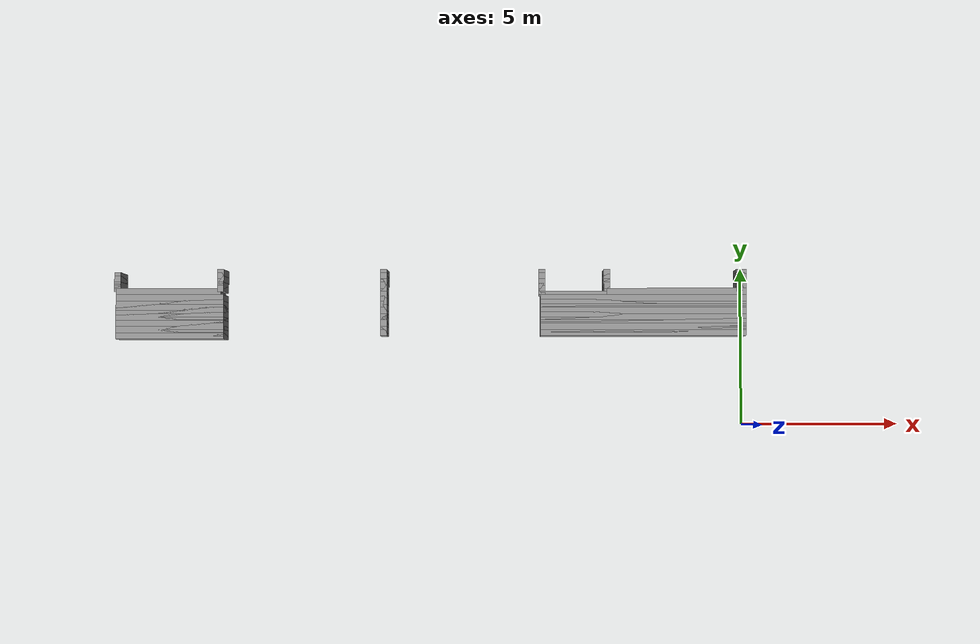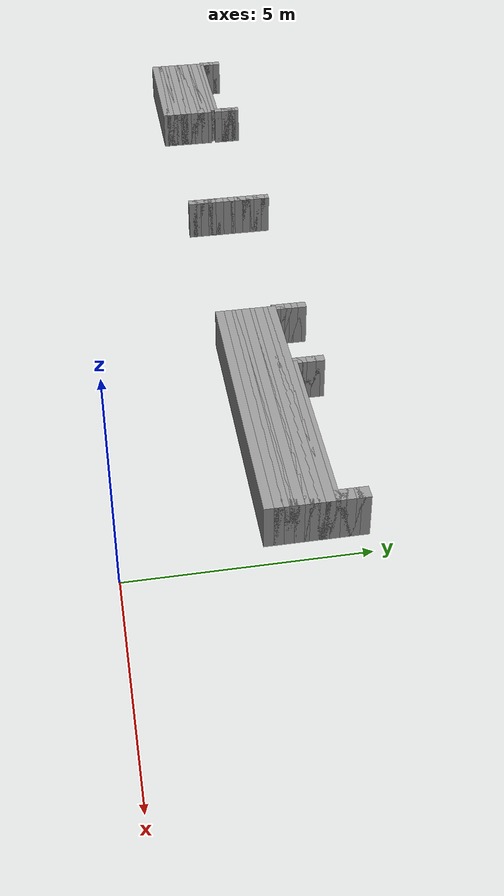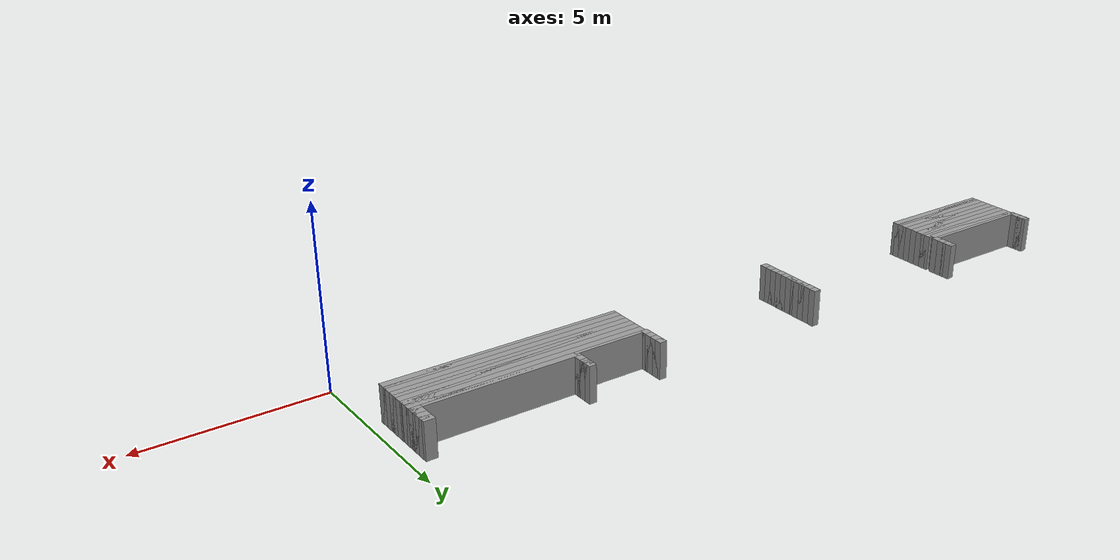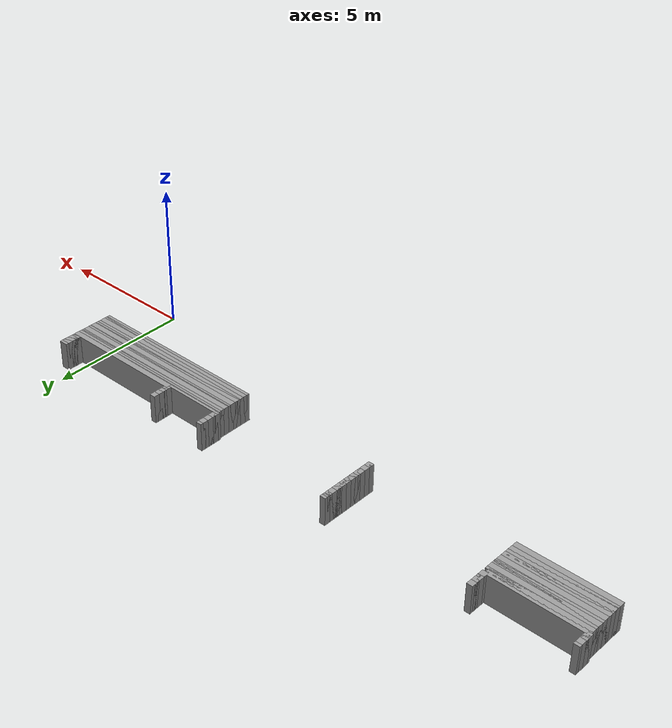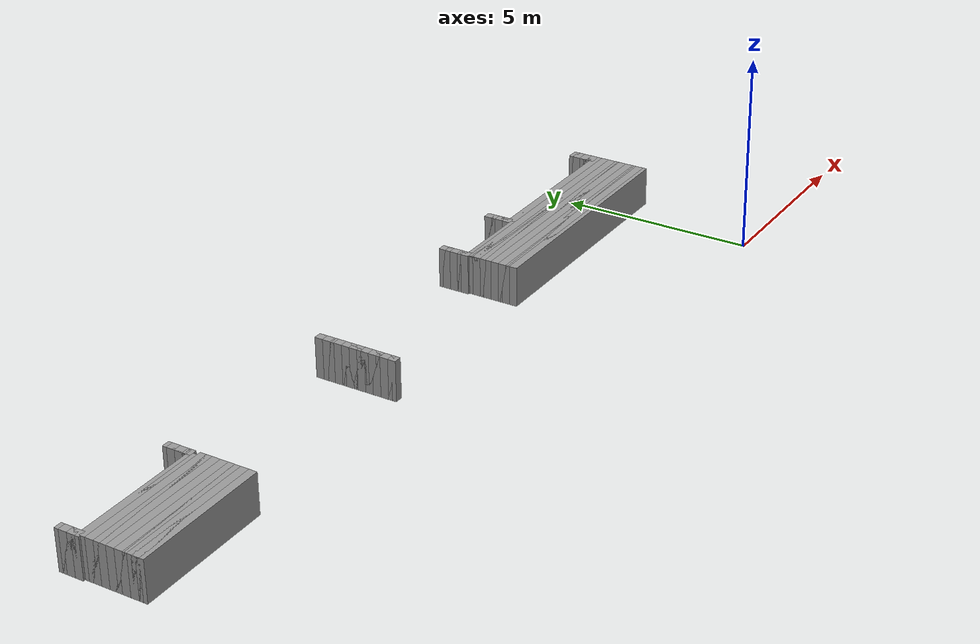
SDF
<sdf version="1.6">
 <world name="GridMap">
  <model name="GridMap">
   <link name="Wall_(182.0,28.0)">
    <collision name="Wall_(182.0,28.0)_Collision">
     <geometry><box><size>3.4 0.2 1.0</size></box></geometry>
     <pose>-18.2 2.8 0.5 0 -0 0</pose>
    </collision>
    <visual name="Wall_(182.0,28.0)_Visual">
     <geometry><box><size>3.4 0.2 1.0</size></box></geometry>
     <pose>-18.2 2.8 0.5 0 -0 0</pose>
     <material>
      <script><uri>file://media/materials/scripts/gazebo.material</uri><name>Gazebo/Grey</name></script>
      <ambient>1 1 1 1</ambient>
     </material>
     <meta><layer>0</layer></meta>
    </visual>
    <pose>0 0 0.5 0 -0 0</pose>
   </link>
   <link name="Wall_(32.5,29.0)">
    <collision name="Wall_(32.5,29.0)_Collision">
     <geometry><box><size>6.5 0.2 1.0</size></box></geometry>
     <pose>-3.25 2.9 0.5 0 -0 0</pose>
    </collision>
    <visual name="Wall_(32.5,29.0)_Visual">
     <geometry><box><size>6.5 0.2 1.0</size></box></geometry>
     <pose>-3.25 2.9 0.5 0 -0 0</pose>
     <material>
      <script><uri>file://media/materials/scripts/gazebo.material</uri><name>Gazebo/Grey</name></script>
      <ambient>1 1 1 1</ambient>
     </material>
     <meta><layer>0</layer></meta>
    </visual>
    <pose>0 0 0.5 0 -0 0</pose>
   </link>
   <link name="Wall_(114.5,29.0)">
    <collision name="Wall_(114.5,29.0)_Collision">
     <geometry><box><size>0.2 0.2 1.0</size></box></geometry>
     <pose>-11.45 2.9 0.5 0 -0 0</pose>
    </collision>
    <visual name="Wall_(114.5,29.0)_Visual">
     <geometry><box><size>0.2 0.2 1.0</size></box></geometry>
     <pose>-11.45 2.9 0.5 0 -0 0</pose>
     <material>
      <script><uri>file://media/materials/scripts/gazebo.material</uri><name>Gazebo/Grey</name></script>
      <ambient>1 1 1 1</ambient>
     </material>
     <meta><layer>0</layer></meta>
    </visual>
    <pose>0 0 0.5 0 -0 0</pose>
   </link>
   <link name="Wall_(182.0,29.0)">
    <collision name="Wall_(182.0,29.0)_Collision">
     <geometry><box><size>3.4 0.2 1.0</size></box></geometry>
     <pose>-18.2 2.9 0.5 0 -0 0</pose>
    </collision>
    <visual name="Wall_(182.0,29.0)_Visual">
     <geometry><box><size>3.4 0.2 1.0</size></box></geometry>
     <pose>-18.2 2.9 0.5 0 -0 0</pose>
     <material>
      <script><uri>file://media/materials/scripts/gazebo.material</uri><name>Gazebo/Grey</name></script>
      <ambient>1 1 1 1</ambient>
     </material>
     <meta><layer>0</layer></meta>
    </visual>
    <pose>0 0 0.5 0 -0 0</pose>
   </link>
   <link name="Wall_(32.5,30.0)">
    <collision name="Wall_(32.5,30.0)_Collision">
     <geometry><box><size>6.5 0.2 1.0</size></box></geometry>
     <pose>-3.25 3.0 0.5 0 -0 0</pose>
    </collision>
    <visual name="Wall_(32.5,30.0)_Visual">
     <geometry><box><size>6.5 0.2 1.0</size></box></geometry>
     <pose>-3.25 3.0 0.5 0 -0 0</pose>
     <material>
      <script><uri>file://media/materials/scripts/gazebo.material</uri><name>Gazebo/Grey</name></script>
      <ambient>1 1 1 1</ambient>
     </material>
     <meta><layer>0</layer></meta>
    </visual>
    <pose>0 0 0.5 0 -0 0</pose>
   </link>
   <link name="Wall_(114.5,30.0)">
    <collision name="Wall_(114.5,30.0)_Collision">
     <geometry><box><size>0.2 0.2 1.0</size></box></geometry>
     <pose>-11.45 3.0 0.5 0 -0 0</pose>
    </collision>
    <visual name="Wall_(114.5,30.0)_Visual">
     <geometry><box><size>0.2 0.2 1.0</size></box></geometry>
     <pose>-11.45 3.0 0.5 0 -0 0</pose>
     <material>
      <script><uri>file://media/materials/scripts/gazebo.material</uri><name>Gazebo/Grey</name></script>
      <ambient>1 1 1 1</ambient>
     </material>
     <meta><layer>0</layer></meta>
    </visual>
    <pose>0 0 0.5 0 -0 0</pose>
   </link>
   <link name="Wall_(182.0,30.0)">
    <collision name="Wall_(182.0,30.0)_Collision">
     <geometry><box><size>3.4 0.2 1.0</size></box></geometry>
     <pose>-18.2 3.0 0.5 0 -0 0</pose>
    </collision>
    <visual name="Wall_(182.0,30.0)_Visual">
     <geometry><box><size>3.4 0.2 1.0</size></box></geometry>
     <pose>-18.2 3.0 0.5 0 -0 0</pose>
     <material>
      <script><uri>file://media/materials/scripts/gazebo.material</uri><name>Gazebo/Grey</name></script>
      <ambient>1 1 1 1</ambient>
     </material>
     <meta><layer>0</layer></meta>
    </visual>
    <pose>0 0 0.5 0 -0 0</pose>
   </link>
   <link name="Wall_(32.5,31.0)">
    <collision name="Wall_(32.5,31.0)_Collision">
     <geometry><box><size>6.5 0.2 1.0</size></box></geometry>
     <pose>-3.25 3.1 0.5 0 -0 0</pose>
    </collision>
    <visual name="Wall_(32.5,31.0)_Visual">
     <geometry><box><size>6.5 0.2 1.0</size></box></geometry>
     <pose>-3.25 3.1 0.5 0 -0 0</pose>
     <material>
      <script><uri>file://media/materials/scripts/gazebo.material</uri><name>Gazebo/Grey</name></script>
      <ambient>1 1 1 1</ambient>
     </material>
     <meta><layer>0</layer></meta>
    </visual>
    <pose>0 0 0.5 0 -0 0</pose>
   </link>
   <link name="Wall_(114.5,31.0)">
    <collision name="Wall_(114.5,31.0)_Collision">
     <geometry><box><size>0.2 0.2 1.0</size></box></geometry>
     <pose>-11.45 3.1 0.5 0 -0 0</pose>
    </collision>
    <visual name="Wall_(114.5,31.0)_Visual">
     <geometry><box><size>0.2 0.2 1.0</size></box></geometry>
     <pose>-11.45 3.1 0.5 0 -0 0</pose>
     <material>
      <script><uri>file://media/materials/scripts/gazebo.material</uri><name>Gazebo/Grey</name></script>
      <ambient>1 1 1 1</ambient>
     </material>
     <meta><layer>0</layer></meta>
    </visual>
    <pose>0 0 0.5 0 -0 0</pose>
   </link>
   <link name="Wall_(182.0,31.0)">
    <collision name="Wall_(182.0,31.0)_Collision">
     <geometry><box><size>3.4 0.2 1.0</size></box></geometry>
     <pose>-18.2 3.1 0.5 0 -0 0</pose>
    </collision>
    <visual name="Wall_(182.0,31.0)_Visual">
     <geometry><box><size>3.4 0.2 1.0</size></box></geometry>
     <pose>-18.2 3.1 0.5 0 -0 0</pose>
     <material>
      <script><uri>file://media/materials/scripts/gazebo.material</uri><name>Gazebo/Grey</name></script>
      <ambient>1 1 1 1</ambient>
     </material>
     <meta><layer>0</layer></meta>
    </visual>
    <pose>0 0 0.5 0 -0 0</pose>
   </link>
   <link name="Wall_(32.5,32.0)">
    <collision name="Wall_(32.5,32.0)_Collision">
     <geometry><box><size>6.5 0.2 1.0</size></box></geometry>
     <pose>-3.25 3.2 0.5 0 -0 0</pose>
    </collision>
    <visual name="Wall_(32.5,32.0)_Visual">
     <geometry><box><size>6.5 0.2 1.0</size></box></geometry>
     <pose>-3.25 3.2 0.5 0 -0 0</pose>
     <material>
      <script><uri>file://media/materials/scripts/gazebo.material</uri><name>Gazebo/Grey</name></script>
      <ambient>1 1 1 1</ambient>
     </material>
     <meta><layer>0</layer></meta>
    </visual>
    <pose>0 0 0.5 0 -0 0</pose>
   </link>
   <link name="Wall_(114.5,32.0)">
    <collision name="Wall_(114.5,32.0)_Collision">
     <geometry><box><size>0.2 0.2 1.0</size></box></geometry>
     <pose>-11.45 3.2 0.5 0 -0 0</pose>
    </collision>
    <visual name="Wall_(114.5,32.0)_Visual">
     <geometry><box><size>0.2 0.2 1.0</size></box></geometry>
     <pose>-11.45 3.2 0.5 0 -0 0</pose>
     <material>
      <script><uri>file://media/materials/scripts/gazebo.material</uri><name>Gazebo/Grey</name></script>
      <ambient>1 1 1 1</ambient>
     </material>
     <meta><layer>0</layer></meta>
    </visual>
    <pose>0 0 0.5 0 -0 0</pose>
   </link>
   <link name="Wall_(182.0,32.0)">
    <collision name="Wall_(182.0,32.0)_Collision">
     <geometry><box><size>3.4 0.2 1.0</size></box></geometry>
     <pose>-18.2 3.2 0.5 0 -0 0</pose>
    </collision>
    <visual name="Wall_(182.0,32.0)_Visual">
     <geometry><box><size>3.4 0.2 1.0</size></box></geometry>
     <pose>-18.2 3.2 0.5 0 -0 0</pose>
     <material>
      <script><uri>file://media/materials/scripts/gazebo.material</uri><name>Gazebo/Grey</name></script>
      <ambient>1 1 1 1</ambient>
     </material>
     <meta><layer>0</layer></meta>
    </visual>
    <pose>0 0 0.5 0 -0 0</pose>
   </link>
   <link name="Wall_(32.5,33.0)">
    <collision name="Wall_(32.5,33.0)_Collision">
     <geometry><box><size>6.5 0.2 1.0</size></box></geometry>
     <pose>-3.25 3.3 0.5 0 -0 0</pose>
    </collision>
    <visual name="Wall_(32.5,33.0)_Visual">
     <geometry><box><size>6.5 0.2 1.0</size></box></geometry>
     <pose>-3.25 3.3 0.5 0 -0 0</pose>
     <material>
      <script><uri>file://media/materials/scripts/gazebo.material</uri><name>Gazebo/Grey</name></script>
      <ambient>1 1 1 1</ambient>
     </material>
     <meta><layer>0</layer></meta>
    </visual>
    <pose>0 0 0.5 0 -0 0</pose>
   </link>
   <link name="Wall_(114.5,33.0)">
    <collision name="Wall_(114.5,33.0)_Collision">
     <geometry><box><size>0.2 0.2 1.0</size></box></geometry>
     <pose>-11.45 3.3 0.5 0 -0 0</pose>
    </collision>
    <visual name="Wall_(114.5,33.0)_Visual">
     <geometry><box><size>0.2 0.2 1.0</size></box></geometry>
     <pose>-11.45 3.3 0.5 0 -0 0</pose>
     <material>
      <script><uri>file://media/materials/scripts/gazebo.material</uri><name>Gazebo/Grey</name></script>
      <ambient>1 1 1 1</ambient>
     </material>
     <meta><layer>0</layer></meta>
    </visual>
    <pose>0 0 0.5 0 -0 0</pose>
   </link>
   <link name="Wall_(182.0,33.0)">
    <collision name="Wall_(182.0,33.0)_Collision">
     <geometry><box><size>3.4 0.2 1.0</size></box></geometry>
     <pose>-18.2 3.3 0.5 0 -0 0</pose>
    </collision>
    <visual name="Wall_(182.0,33.0)_Visual">
     <geometry><box><size>3.4 0.2 1.0</size></box></geometry>
     <pose>-18.2 3.3 0.5 0 -0 0</pose>
     <material>
      <script><uri>file://media/materials/scripts/gazebo.material</uri><name>Gazebo/Grey</name></script>
      <ambient>1 1 1 1</ambient>
     </material>
     <meta><layer>0</layer></meta>
    </visual>
    <pose>0 0 0.5 0 -0 0</pose>
   </link>
   <link name="Wall_(32.5,34.0)">
    <collision name="Wall_(32.5,34.0)_Collision">
     <geometry><box><size>6.5 0.2 1.0</size></box></geometry>
     <pose>-3.25 3.4 0.5 0 -0 0</pose>
    </collision>
    <visual name="Wall_(32.5,34.0)_Visual">
     <geometry><box><size>6.5 0.2 1.0</size></box></geometry>
     <pose>-3.25 3.4 0.5 0 -0 0</pose>
     <material>
      <script><uri>file://media/materials/scripts/gazebo.material</uri><name>Gazebo/Grey</name></script>
      <ambient>1 1 1 1</ambient>
     </material>
     <meta><layer>0</layer></meta>
    </visual>
    <pose>0 0 0.5 0 -0 0</pose>
   </link>
   <link name="Wall_(114.5,34.0)">
    <collision name="Wall_(114.5,34.0)_Collision">
     <geometry><box><size>0.2 0.2 1.0</size></box></geometry>
     <pose>-11.45 3.4 0.5 0 -0 0</pose>
    </collision>
    <visual name="Wall_(114.5,34.0)_Visual">
     <geometry><box><size>0.2 0.2 1.0</size></box></geometry>
     <pose>-11.45 3.4 0.5 0 -0 0</pose>
     <material>
      <script><uri>file://media/materials/scripts/gazebo.material</uri><name>Gazebo/Grey</name></script>
      <ambient>1 1 1 1</ambient>
     </material>
     <meta><layer>0</layer></meta>
    </visual>
    <pose>0 0 0.5 0 -0 0</pose>
   </link>
   <link name="Wall_(182.0,34.0)">
    <collision name="Wall_(182.0,34.0)_Collision">
     <geometry><box><size>3.4 0.2 1.0</size></box></geometry>
     <pose>-18.2 3.4 0.5 0 -0 0</pose>
    </collision>
    <visual name="Wall_(182.0,34.0)_Visual">
     <geometry><box><size>3.4 0.2 1.0</size></box></geometry>
     <pose>-18.2 3.4 0.5 0 -0 0</pose>
     <material>
      <script><uri>file://media/materials/scripts/gazebo.material</uri><name>Gazebo/Grey</name></script>
      <ambient>1 1 1 1</ambient>
     </material>
     <meta><layer>0</layer></meta>
    </visual>
    <pose>0 0 0.5 0 -0 0</pose>
   </link>
   <link name="Wall_(32.5,35.0)">
    <collision name="Wall_(32.5,35.0)_Collision">
     <geometry><box><size>6.5 0.2 1.0</size></box></geometry>
     <pose>-3.25 3.5 0.5 0 -0 0</pose>
    </collision>
    <visual name="Wall_(32.5,35.0)_Visual">
     <geometry><box><size>6.5 0.2 1.0</size></box></geometry>
     <pose>-3.25 3.5 0.5 0 -0 0</pose>
     <material>
      <script><uri>file://media/materials/scripts/gazebo.material</uri><name>Gazebo/Grey</name></script>
      <ambient>1 1 1 1</ambient>
     </material>
     <meta><layer>0</layer></meta>
    </visual>
    <pose>0 0 0.5 0 -0 0</pose>
   </link>
   <link name="Wall_(114.5,35.0)">
    <collision name="Wall_(114.5,35.0)_Collision">
     <geometry><box><size>0.2 0.2 1.0</size></box></geometry>
     <pose>-11.45 3.5 0.5 0 -0 0</pose>
    </collision>
    <visual name="Wall_(114.5,35.0)_Visual">
     <geometry><box><size>0.2 0.2 1.0</size></box></geometry>
     <pose>-11.45 3.5 0.5 0 -0 0</pose>
     <material>
      <script><uri>file://media/materials/scripts/gazebo.material</uri><name>Gazebo/Grey</name></script>
      <ambient>1 1 1 1</ambient>
     </material>
     <meta><layer>0</layer></meta>
    </visual>
    <pose>0 0 0.5 0 -0 0</pose>
   </link>
   <link name="Wall_(182.0,35.0)">
    <collision name="Wall_(182.0,35.0)_Collision">
     <geometry><box><size>3.4 0.2 1.0</size></box></geometry>
     <pose>-18.2 3.5 0.5 0 -0 0</pose>
    </collision>
    <visual name="Wall_(182.0,35.0)_Visual">
     <geometry><box><size>3.4 0.2 1.0</size></box></geometry>
     <pose>-18.2 3.5 0.5 0 -0 0</pose>
     <material>
      <script><uri>file://media/materials/scripts/gazebo.material</uri><name>Gazebo/Grey</name></script>
      <ambient>1 1 1 1</ambient>
     </material>
     <meta><layer>0</layer></meta>
    </visual>
    <pose>0 0 0.5 0 -0 0</pose>
   </link>
   <link name="Wall_(32.5,36.0)">
    <collision name="Wall_(32.5,36.0)_Collision">
     <geometry><box><size>6.5 0.2 1.0</size></box></geometry>
     <pose>-3.25 3.6 0.5 0 -0 0</pose>
    </collision>
    <visual name="Wall_(32.5,36.0)_Visual">
     <geometry><box><size>6.5 0.2 1.0</size></box></geometry>
     <pose>-3.25 3.6 0.5 0 -0 0</pose>
     <material>
      <script><uri>file://media/materials/scripts/gazebo.material</uri><name>Gazebo/Grey</name></script>
      <ambient>1 1 1 1</ambient>
     </material>
     <meta><layer>0</layer></meta>
    </visual>
    <pose>0 0 0.5 0 -0 0</pose>
   </link>
   <link name="Wall_(114.5,36.0)">
    <collision name="Wall_(114.5,36.0)_Collision">
     <geometry><box><size>0.2 0.2 1.0</size></box></geometry>
     <pose>-11.45 3.6 0.5 0 -0 0</pose>
    </collision>
    <visual name="Wall_(114.5,36.0)_Visual">
     <geometry><box><size>0.2 0.2 1.0</size></box></geometry>
     <pose>-11.45 3.6 0.5 0 -0 0</pose>
     <material>
      <script><uri>file://media/materials/scripts/gazebo.material</uri><name>Gazebo/Grey</name></script>
      <ambient>1 1 1 1</ambient>
     </material>
     <meta><layer>0</layer></meta>
    </visual>
    <pose>0 0 0.5 0 -0 0</pose>
   </link>
   <link name="Wall_(182.0,36.0)">
    <collision name="Wall_(182.0,36.0)_Collision">
     <geometry><box><size>3.4 0.2 1.0</size></box></geometry>
     <pose>-18.2 3.6 0.5 0 -0 0</pose>
    </collision>
    <visual name="Wall_(182.0,36.0)_Visual">
     <geometry><box><size>3.4 0.2 1.0</size></box></geometry>
     <pose>-18.2 3.6 0.5 0 -0 0</pose>
     <material>
      <script><uri>file://media/materials/scripts/gazebo.material</uri><name>Gazebo/Grey</name></script>
      <ambient>1 1 1 1</ambient>
     </material>
     <meta><layer>0</layer></meta>
    </visual>
    <pose>0 0 0.5 0 -0 0</pose>
   </link>
   <link name="Wall_(32.5,37.0)">
    <collision name="Wall_(32.5,37.0)_Collision">
     <geometry><box><size>6.5 0.2 1.0</size></box></geometry>
     <pose>-3.25 3.7 0.5 0 -0 0</pose>
    </collision>
    <visual name="Wall_(32.5,37.0)_Visual">
     <geometry><box><size>6.5 0.2 1.0</size></box></geometry>
     <pose>-3.25 3.7 0.5 0 -0 0</pose>
     <material>
      <script><uri>file://media/materials/scripts/gazebo.material</uri><name>Gazebo/Grey</name></script>
      <ambient>1 1 1 1</ambient>
     </material>
     <meta><layer>0</layer></meta>
    </visual>
    <pose>0 0 0.5 0 -0 0</pose>
   </link>
   <link name="Wall_(114.5,37.0)">
    <collision name="Wall_(114.5,37.0)_Collision">
     <geometry><box><size>0.2 0.2 1.0</size></box></geometry>
     <pose>-11.45 3.7 0.5 0 -0 0</pose>
    </collision>
    <visual name="Wall_(114.5,37.0)_Visual">
     <geometry><box><size>0.2 0.2 1.0</size></box></geometry>
     <pose>-11.45 3.7 0.5 0 -0 0</pose>
     <material>
      <script><uri>file://media/materials/scripts/gazebo.material</uri><name>Gazebo/Grey</name></script>
      <ambient>1 1 1 1</ambient>
     </material>
     <meta><layer>0</layer></meta>
    </visual>
    <pose>0 0 0.5 0 -0 0</pose>
   </link>
   <link name="Wall_(182.0,37.0)">
    <collision name="Wall_(182.0,37.0)_Collision">
     <geometry><box><size>3.4 0.2 1.0</size></box></geometry>
     <pose>-18.2 3.7 0.5 0 -0 0</pose>
    </collision>
    <visual name="Wall_(182.0,37.0)_Visual">
     <geometry><box><size>3.4 0.2 1.0</size></box></geometry>
     <pose>-18.2 3.7 0.5 0 -0 0</pose>
     <material>
      <script><uri>file://media/materials/scripts/gazebo.material</uri><name>Gazebo/Grey</name></script>
      <ambient>1 1 1 1</ambient>
     </material>
     <meta><layer>0</layer></meta>
    </visual>
    <pose>0 0 0.5 0 -0 0</pose>
   </link>
   <link name="Wall_(32.5,38.0)">
    <collision name="Wall_(32.5,38.0)_Collision">
     <geometry><box><size>6.5 0.2 1.0</size></box></geometry>
     <pose>-3.25 3.8 0.5 0 -0 0</pose>
    </collision>
    <visual name="Wall_(32.5,38.0)_Visual">
     <geometry><box><size>6.5 0.2 1.0</size></box></geometry>
     <pose>-3.25 3.8 0.5 0 -0 0</pose>
     <material>
      <script><uri>file://media/materials/scripts/gazebo.material</uri><name>Gazebo/Grey</name></script>
      <ambient>1 1 1 1</ambient>
     </material>
     <meta><layer>0</layer></meta>
    </visual>
    <pose>0 0 0.5 0 -0 0</pose>
   </link>
   <link name="Wall_(114.5,38.0)">
    <collision name="Wall_(114.5,38.0)_Collision">
     <geometry><box><size>0.2 0.2 1.0</size></box></geometry>
     <pose>-11.45 3.8 0.5 0 -0 0</pose>
    </collision>
    <visual name="Wall_(114.5,38.0)_Visual">
     <geometry><box><size>0.2 0.2 1.0</size></box></geometry>
     <pose>-11.45 3.8 0.5 0 -0 0</pose>
     <material>
      <script><uri>file://media/materials/scripts/gazebo.material</uri><name>Gazebo/Grey</name></script>
      <ambient>1 1 1 1</ambient>
     </material>
     <meta><layer>0</layer></meta>
    </visual>
    <pose>0 0 0.5 0 -0 0</pose>
   </link>
   <link name="Wall_(182.0,38.0)">
    <collision name="Wall_(182.0,38.0)_Collision">
     <geometry><box><size>3.4 0.2 1.0</size></box></geometry>
     <pose>-18.2 3.8 0.5 0 -0 0</pose>
    </collision>
    <visual name="Wall_(182.0,38.0)_Visual">
     <geometry><box><size>3.4 0.2 1.0</size></box></geometry>
     <pose>-18.2 3.8 0.5 0 -0 0</pose>
     <material>
      <script><uri>file://media/materials/scripts/gazebo.material</uri><name>Gazebo/Grey</name></script>
      <ambient>1 1 1 1</ambient>
     </material>
     <meta><layer>0</layer></meta>
    </visual>
    <pose>0 0 0.5 0 -0 0</pose>
   </link>
   <link name="Wall_(32.5,39.0)">
    <collision name="Wall_(32.5,39.0)_Collision">
     <geometry><box><size>6.5 0.2 1.0</size></box></geometry>
     <pose>-3.25 3.9 0.5 0 -0 0</pose>
    </collision>
    <visual name="Wall_(32.5,39.0)_Visual">
     <geometry><box><size>6.5 0.2 1.0</size></box></geometry>
     <pose>-3.25 3.9 0.5 0 -0 0</pose>
     <material>
      <script><uri>file://media/materials/scripts/gazebo.material</uri><name>Gazebo/Grey</name></script>
      <ambient>1 1 1 1</ambient>
     </material>
     <meta><layer>0</layer></meta>
    </visual>
    <pose>0 0 0.5 0 -0 0</pose>
   </link>
   <link name="Wall_(114.5,39.0)">
    <collision name="Wall_(114.5,39.0)_Collision">
     <geometry><box><size>0.2 0.2 1.0</size></box></geometry>
     <pose>-11.45 3.9 0.5 0 -0 0</pose>
    </collision>
    <visual name="Wall_(114.5,39.0)_Visual">
     <geometry><box><size>0.2 0.2 1.0</size></box></geometry>
     <pose>-11.45 3.9 0.5 0 -0 0</pose>
     <material>
      <script><uri>file://media/materials/scripts/gazebo.material</uri><name>Gazebo/Grey</name></script>
      <ambient>1 1 1 1</ambient>
     </material>
     <meta><layer>0</layer></meta>
    </visual>
    <pose>0 0 0.5 0 -0 0</pose>
   </link>
   <link name="Wall_(182.0,39.0)">
    <collision name="Wall_(182.0,39.0)_Collision">
     <geometry><box><size>3.4 0.2 1.0</size></box></geometry>
     <pose>-18.2 3.9 0.5 0 -0 0</pose>
    </collision>
    <visual name="Wall_(182.0,39.0)_Visual">
     <geometry><box><size>3.4 0.2 1.0</size></box></geometry>
     <pose>-18.2 3.9 0.5 0 -0 0</pose>
     <material>
      <script><uri>file://media/materials/scripts/gazebo.material</uri><name>Gazebo/Grey</name></script>
      <ambient>1 1 1 1</ambient>
     </material>
     <meta><layer>0</layer></meta>
    </visual>
    <pose>0 0 0.5 0 -0 0</pose>
   </link>
   <link name="Wall_(32.5,40.0)">
    <collision name="Wall_(32.5,40.0)_Collision">
     <geometry><box><size>6.5 0.2 1.0</size></box></geometry>
     <pose>-3.25 4.0 0.5 0 -0 0</pose>
    </collision>
    <visual name="Wall_(32.5,40.0)_Visual">
     <geometry><box><size>6.5 0.2 1.0</size></box></geometry>
     <pose>-3.25 4.0 0.5 0 -0 0</pose>
     <material>
      <script><uri>file://media/materials/scripts/gazebo.material</uri><name>Gazebo/Grey</name></script>
      <ambient>1 1 1 1</ambient>
     </material>
     <meta><layer>0</layer></meta>
    </visual>
    <pose>0 0 0.5 0 -0 0</pose>
   </link>
   <link name="Wall_(114.5,40.0)">
    <collision name="Wall_(114.5,40.0)_Collision">
     <geometry><box><size>0.2 0.2 1.0</size></box></geometry>
     <pose>-11.45 4.0 0.5 0 -0 0</pose>
    </collision>
    <visual name="Wall_(114.5,40.0)_Visual">
     <geometry><box><size>0.2 0.2 1.0</size></box></geometry>
     <pose>-11.45 4.0 0.5 0 -0 0</pose>
     <material>
      <script><uri>file://media/materials/scripts/gazebo.material</uri><name>Gazebo/Grey</name></script>
      <ambient>1 1 1 1</ambient>
     </material>
     <meta><layer>0</layer></meta>
    </visual>
    <pose>0 0 0.5 0 -0 0</pose>
   </link>
   <link name="Wall_(182.0,40.0)">
    <collision name="Wall_(182.0,40.0)_Collision">
     <geometry><box><size>3.4 0.2 1.0</size></box></geometry>
     <pose>-18.2 4.0 0.5 0 -0 0</pose>
    </collision>
    <visual name="Wall_(182.0,40.0)_Visual">
     <geometry><box><size>3.4 0.2 1.0</size></box></geometry>
     <pose>-18.2 4.0 0.5 0 -0 0</pose>
     <material>
      <script><uri>file://media/materials/scripts/gazebo.material</uri><name>Gazebo/Grey</name></script>
      <ambient>1 1 1 1</ambient>
     </material>
     <meta><layer>0</layer></meta>
    </visual>
    <pose>0 0 0.5 0 -0 0</pose>
   </link>
   <link name="Wall_(32.5,41.0)">
    <collision name="Wall_(32.5,41.0)_Collision">
     <geometry><box><size>6.5 0.2 1.0</size></box></geometry>
     <pose>-3.25 4.1 0.5 0 -0 0</pose>
    </collision>
    <visual name="Wall_(32.5,41.0)_Visual">
     <geometry><box><size>6.5 0.2 1.0</size></box></geometry>
     <pose>-3.25 4.1 0.5 0 -0 0</pose>
     <material>
      <script><uri>file://media/materials/scripts/gazebo.material</uri><name>Gazebo/Grey</name></script>
      <ambient>1 1 1 1</ambient>
     </material>
     <meta><layer>0</layer></meta>
    </visual>
    <pose>0 0 0.5 0 -0 0</pose>
   </link>
   <link name="Wall_(114.5,41.0)">
    <collision name="Wall_(114.5,41.0)_Collision">
     <geometry><box><size>0.2 0.2 1.0</size></box></geometry>
     <pose>-11.45 4.1 0.5 0 -0 0</pose>
    </collision>
    <visual name="Wall_(114.5,41.0)_Visual">
     <geometry><box><size>0.2 0.2 1.0</size></box></geometry>
     <pose>-11.45 4.1 0.5 0 -0 0</pose>
     <material>
      <script><uri>file://media/materials/scripts/gazebo.material</uri><name>Gazebo/Grey</name></script>
      <ambient>1 1 1 1</ambient>
     </material>
     <meta><layer>0</layer></meta>
    </visual>
    <pose>0 0 0.5 0 -0 0</pose>
   </link>
   <link name="Wall_(182.5,41.0)">
    <collision name="Wall_(182.5,41.0)_Collision">
     <geometry><box><size>3.3 0.2 1.0</size></box></geometry>
     <pose>-18.25 4.1 0.5 0 -0 0</pose>
    </collision>
    <visual name="Wall_(182.5,41.0)_Visual">
     <geometry><box><size>3.3 0.2 1.0</size></box></geometry>
     <pose>-18.25 4.1 0.5 0 -0 0</pose>
     <material>
      <script><uri>file://media/materials/scripts/gazebo.material</uri><name>Gazebo/Grey</name></script>
      <ambient>1 1 1 1</ambient>
     </material>
     <meta><layer>0</layer></meta>
    </visual>
    <pose>0 0 0.5 0 -0 0</pose>
   </link>
   <link name="Wall_(22.0,42.0)">
    <collision name="Wall_(22.0,42.0)_Collision">
     <geometry><box><size>4.4 0.2 1.0</size></box></geometry>
     <pose>-2.2 4.2 0.5 0 -0 0</pose>
    </collision>
    <visual name="Wall_(22.0,42.0)_Visual">
     <geometry><box><size>4.4 0.2 1.0</size></box></geometry>
     <pose>-2.2 4.2 0.5 0 -0 0</pose>
     <material>
      <script><uri>file://media/materials/scripts/gazebo.material</uri><name>Gazebo/Grey</name></script>
      <ambient>1 1 1 1</ambient>
     </material>
     <meta><layer>0</layer></meta>
    </visual>
    <pose>0 0 0.5 0 -0 0</pose>
   </link>
   <link name="Wall_(64.5,42.0)">
    <collision name="Wall_(64.5,42.0)_Collision">
     <geometry><box><size>0.2 0.2 1.0</size></box></geometry>
     <pose>-6.45 4.2 0.5 0 -0 0</pose>
    </collision>
    <visual name="Wall_(64.5,42.0)_Visual">
     <geometry><box><size>0.2 0.2 1.0</size></box></geometry>
     <pose>-6.45 4.2 0.5 0 -0 0</pose>
     <material>
      <script><uri>file://media/materials/scripts/gazebo.material</uri><name>Gazebo/Grey</name></script>
      <ambient>1 1 1 1</ambient>
     </material>
     <meta><layer>0</layer></meta>
    </visual>
    <pose>0 0 0.5 0 -0 0</pose>
   </link>
   <link name="Wall_(114.5,42.0)">
    <collision name="Wall_(114.5,42.0)_Collision">
     <geometry><box><size>0.2 0.2 1.0</size></box></geometry>
     <pose>-11.45 4.2 0.5 0 -0 0</pose>
    </collision>
    <visual name="Wall_(114.5,42.0)_Visual">
     <geometry><box><size>0.2 0.2 1.0</size></box></geometry>
     <pose>-11.45 4.2 0.5 0 -0 0</pose>
     <material>
      <script><uri>file://media/materials/scripts/gazebo.material</uri><name>Gazebo/Grey</name></script>
      <ambient>1 1 1 1</ambient>
     </material>
     <meta><layer>0</layer></meta>
    </visual>
    <pose>0 0 0.5 0 -0 0</pose>
   </link>
   <link name="Wall_(182.5,42.0)">
    <collision name="Wall_(182.5,42.0)_Collision">
     <geometry><box><size>3.3 0.2 1.0</size></box></geometry>
     <pose>-18.25 4.2 0.5 0 -0 0</pose>
    </collision>
    <visual name="Wall_(182.5,42.0)_Visual">
     <geometry><box><size>3.3 0.2 1.0</size></box></geometry>
     <pose>-18.25 4.2 0.5 0 -0 0</pose>
     <material>
      <script><uri>file://media/materials/scripts/gazebo.material</uri><name>Gazebo/Grey</name></script>
      <ambient>1 1 1 1</ambient>
     </material>
     <meta><layer>0</layer></meta>
    </visual>
    <pose>0 0 0.5 0 -0 0</pose>
   </link>
   <link name="Wall_(1.5,43.0)">
    <collision name="Wall_(1.5,43.0)_Collision">
     <geometry><box><size>0.3 0.2 1.0</size></box></geometry>
     <pose>-0.15 4.3 0.5 0 -0 0</pose>
    </collision>
    <visual name="Wall_(1.5,43.0)_Visual">
     <geometry><box><size>0.3 0.2 1.0</size></box></geometry>
     <pose>-0.15 4.3 0.5 0 -0 0</pose>
     <material>
      <script><uri>file://media/materials/scripts/gazebo.material</uri><name>Gazebo/Grey</name></script>
      <ambient>1 1 1 1</ambient>
     </material>
     <meta><layer>0</layer></meta>
    </visual>
    <pose>0 0 0.5 0 -0 0</pose>
   </link>
   <link name="Wall_(44.0,43.0)">
    <collision name="Wall_(44.0,43.0)_Collision">
     <geometry><box><size>0.2 0.2 1.0</size></box></geometry>
     <pose>-4.4 4.3 0.5 0 -0 0</pose>
    </collision>
    <visual name="Wall_(44.0,43.0)_Visual">
     <geometry><box><size>0.2 0.2 1.0</size></box></geometry>
     <pose>-4.4 4.3 0.5 0 -0 0</pose>
     <material>
      <script><uri>file://media/materials/scripts/gazebo.material</uri><name>Gazebo/Grey</name></script>
      <ambient>1 1 1 1</ambient>
     </material>
     <meta><layer>0</layer></meta>
    </visual>
    <pose>0 0 0.5 0 -0 0</pose>
   </link>
   <link name="Wall_(64.5,43.0)">
    <collision name="Wall_(64.5,43.0)_Collision">
     <geometry><box><size>0.2 0.2 1.0</size></box></geometry>
     <pose>-6.45 4.3 0.5 0 -0 0</pose>
    </collision>
    <visual name="Wall_(64.5,43.0)_Visual">
     <geometry><box><size>0.2 0.2 1.0</size></box></geometry>
     <pose>-6.45 4.3 0.5 0 -0 0</pose>
     <material>
      <script><uri>file://media/materials/scripts/gazebo.material</uri><name>Gazebo/Grey</name></script>
      <ambient>1 1 1 1</ambient>
     </material>
     <meta><layer>0</layer></meta>
    </visual>
    <pose>0 0 0.5 0 -0 0</pose>
   </link>
   <link name="Wall_(114.5,43.0)">
    <collision name="Wall_(114.5,43.0)_Collision">
     <geometry><box><size>0.2 0.2 1.0</size></box></geometry>
     <pose>-11.45 4.3 0.5 0 -0 0</pose>
    </collision>
    <visual name="Wall_(114.5,43.0)_Visual">
     <geometry><box><size>0.2 0.2 1.0</size></box></geometry>
     <pose>-11.45 4.3 0.5 0 -0 0</pose>
     <material>
      <script><uri>file://media/materials/scripts/gazebo.material</uri><name>Gazebo/Grey</name></script>
      <ambient>1 1 1 1</ambient>
     </material>
     <meta><layer>0</layer></meta>
    </visual>
    <pose>0 0 0.5 0 -0 0</pose>
   </link>
   <link name="Wall_(166.0,43.0)">
    <collision name="Wall_(166.0,43.0)_Collision">
     <geometry><box><size>0.2 0.2 1.0</size></box></geometry>
     <pose>-16.6 4.3 0.5 0 -0 0</pose>
    </collision>
    <visual name="Wall_(166.0,43.0)_Visual">
     <geometry><box><size>0.2 0.2 1.0</size></box></geometry>
     <pose>-16.6 4.3 0.5 0 -0 0</pose>
     <material>
      <script><uri>file://media/materials/scripts/gazebo.material</uri><name>Gazebo/Grey</name></script>
      <ambient>1 1 1 1</ambient>
     </material>
     <meta><layer>0</layer></meta>
    </visual>
    <pose>0 0 0.5 0 -0 0</pose>
   </link>
   <link name="Wall_(198.5,43.0)">
    <collision name="Wall_(198.5,43.0)_Collision">
     <geometry><box><size>0.2 0.2 1.0</size></box></geometry>
     <pose>-19.85 4.3 0.5 0 -0 0</pose>
    </collision>
    <visual name="Wall_(198.5,43.0)_Visual">
     <geometry><box><size>0.2 0.2 1.0</size></box></geometry>
     <pose>-19.85 4.3 0.5 0 -0 0</pose>
     <material>
      <script><uri>file://media/materials/scripts/gazebo.material</uri><name>Gazebo/Grey</name></script>
      <ambient>1 1 1 1</ambient>
     </material>
     <meta><layer>0</layer></meta>
    </visual>
    <pose>0 0 0.5 0 -0 0</pose>
   </link>
   <link name="Wall_(1.5,44.0)">
    <collision name="Wall_(1.5,44.0)_Collision">
     <geometry><box><size>0.3 0.2 1.0</size></box></geometry>
     <pose>-0.15 4.4 0.5 0 -0 0</pose>
    </collision>
    <visual name="Wall_(1.5,44.0)_Visual">
     <geometry><box><size>0.3 0.2 1.0</size></box></geometry>
     <pose>-0.15 4.4 0.5 0 -0 0</pose>
     <material>
      <script><uri>file://media/materials/scripts/gazebo.material</uri><name>Gazebo/Grey</name></script>
      <ambient>1 1 1 1</ambient>
     </material>
     <meta><layer>0</layer></meta>
    </visual>
    <pose>0 0 0.5 0 -0 0</pose>
   </link>
   <link name="Wall_(44.0,44.0)">
    <collision name="Wall_(44.0,44.0)_Collision">
     <geometry><box><size>0.2 0.2 1.0</size></box></geometry>
     <pose>-4.4 4.4 0.5 0 -0 0</pose>
    </collision>
    <visual name="Wall_(44.0,44.0)_Visual">
     <geometry><box><size>0.2 0.2 1.0</size></box></geometry>
     <pose>-4.4 4.4 0.5 0 -0 0</pose>
     <material>
      <script><uri>file://media/materials/scripts/gazebo.material</uri><name>Gazebo/Grey</name></script>
      <ambient>1 1 1 1</ambient>
     </material>
     <meta><layer>0</layer></meta>
    </visual>
    <pose>0 0 0.5 0 -0 0</pose>
   </link>
   <link name="Wall_(64.5,44.0)">
    <collision name="Wall_(64.5,44.0)_Collision">
     <geometry><box><size>0.2 0.2 1.0</size></box></geometry>
     <pose>-6.45 4.4 0.5 0 -0 0</pose>
    </collision>
    <visual name="Wall_(64.5,44.0)_Visual">
     <geometry><box><size>0.2 0.2 1.0</size></box></geometry>
     <pose>-6.45 4.4 0.5 0 -0 0</pose>
     <material>
      <script><uri>file://media/materials/scripts/gazebo.material</uri><name>Gazebo/Grey</name></script>
      <ambient>1 1 1 1</ambient>
     </material>
     <meta><layer>0</layer></meta>
    </visual>
    <pose>0 0 0.5 0 -0 0</pose>
   </link>
   <link name="Wall_(114.5,44.0)">
    <collision name="Wall_(114.5,44.0)_Collision">
     <geometry><box><size>0.2 0.2 1.0</size></box></geometry>
     <pose>-11.45 4.4 0.5 0 -0 0</pose>
    </collision>
    <visual name="Wall_(114.5,44.0)_Visual">
     <geometry><box><size>0.2 0.2 1.0</size></box></geometry>
     <pose>-11.45 4.4 0.5 0 -0 0</pose>
     <material>
      <script><uri>file://media/materials/scripts/gazebo.material</uri><name>Gazebo/Grey</name></script>
      <ambient>1 1 1 1</ambient>
     </material>
     <meta><layer>0</layer></meta>
    </visual>
    <pose>0 0 0.5 0 -0 0</pose>
   </link>
   <link name="Wall_(166.0,44.0)">
    <collision name="Wall_(166.0,44.0)_Collision">
     <geometry><box><size>0.2 0.2 1.0</size></box></geometry>
     <pose>-16.6 4.4 0.5 0 -0 0</pose>
    </collision>
    <visual name="Wall_(166.0,44.0)_Visual">
     <geometry><box><size>0.2 0.2 1.0</size></box></geometry>
     <pose>-16.6 4.4 0.5 0 -0 0</pose>
     <material>
      <script><uri>file://media/materials/scripts/gazebo.material</uri><name>Gazebo/Grey</name></script>
      <ambient>1 1 1 1</ambient>
     </material>
     <meta><layer>0</layer></meta>
    </visual>
    <pose>0 0 0.5 0 -0 0</pose>
   </link>
   <link name="Wall_(198.5,44.0)">
    <collision name="Wall_(198.5,44.0)_Collision">
     <geometry><box><size>0.2 0.2 1.0</size></box></geometry>
     <pose>-19.85 4.4 0.5 0 -0 0</pose>
    </collision>
    <visual name="Wall_(198.5,44.0)_Visual">
     <geometry><box><size>0.2 0.2 1.0</size></box></geometry>
     <pose>-19.85 4.4 0.5 0 -0 0</pose>
     <material>
      <script><uri>file://media/materials/scripts/gazebo.material</uri><name>Gazebo/Grey</name></script>
      <ambient>1 1 1 1</ambient>
     </material>
     <meta><layer>0</layer></meta>
    </visual>
    <pose>0 0 0.5 0 -0 0</pose>
   </link>
   <link name="Wall_(1.5,45.0)">
    <collision name="Wall_(1.5,45.0)_Collision">
     <geometry><box><size>0.3 0.2 1.0</size></box></geometry>
     <pose>-0.15 4.5 0.5 0 -0 0</pose>
    </collision>
    <visual name="Wall_(1.5,45.0)_Visual">
     <geometry><box><size>0.3 0.2 1.0</size></box></geometry>
     <pose>-0.15 4.5 0.5 0 -0 0</pose>
     <material>
      <script><uri>file://media/materials/scripts/gazebo.material</uri><name>Gazebo/Grey</name></script>
      <ambient>1 1 1 1</ambient>
     </material>
     <meta><layer>0</layer></meta>
    </visual>
    <pose>0 0 0.5 0 -0 0</pose>
   </link>
   <link name="Wall_(44.0,45.0)">
    <collision name="Wall_(44.0,45.0)_Collision">
     <geometry><box><size>0.2 0.2 1.0</size></box></geometry>
     <pose>-4.4 4.5 0.5 0 -0 0</pose>
    </collision>
    <visual name="Wall_(44.0,45.0)_Visual">
     <geometry><box><size>0.2 0.2 1.0</size></box></geometry>
     <pose>-4.4 4.5 0.5 0 -0 0</pose>
     <material>
      <script><uri>file://media/materials/scripts/gazebo.material</uri><name>Gazebo/Grey</name></script>
      <ambient>1 1 1 1</ambient>
     </material>
     <meta><layer>0</layer></meta>
    </visual>
    <pose>0 0 0.5 0 -0 0</pose>
   </link>
   <link name="Wall_(64.5,45.0)">
    <collision name="Wall_(64.5,45.0)_Collision">
     <geometry><box><size>0.2 0.2 1.0</size></box></geometry>
     <pose>-6.45 4.5 0.5 0 -0 0</pose>
    </collision>
    <visual name="Wall_(64.5,45.0)_Visual">
     <geometry><box><size>0.2 0.2 1.0</size></box></geometry>
     <pose>-6.45 4.5 0.5 0 -0 0</pose>
     <material>
      <script><uri>file://media/materials/scripts/gazebo.material</uri><name>Gazebo/Grey</name></script>
      <ambient>1 1 1 1</ambient>
     </material>
     <meta><layer>0</layer></meta>
    </visual>
    <pose>0 0 0.5 0 -0 0</pose>
   </link>
   <link name="Wall_(114.5,45.0)">
    <collision name="Wall_(114.5,45.0)_Collision">
     <geometry><box><size>0.2 0.2 1.0</size></box></geometry>
     <pose>-11.45 4.5 0.5 0 -0 0</pose>
    </collision>
    <visual name="Wall_(114.5,45.0)_Visual">
     <geometry><box><size>0.2 0.2 1.0</size></box></geometry>
     <pose>-11.45 4.5 0.5 0 -0 0</pose>
     <material>
      <script><uri>file://media/materials/scripts/gazebo.material</uri><name>Gazebo/Grey</name></script>
      <ambient>1 1 1 1</ambient>
     </material>
     <meta><layer>0</layer></meta>
    </visual>
    <pose>0 0 0.5 0 -0 0</pose>
   </link>
   <link name="Wall_(166.0,45.0)">
    <collision name="Wall_(166.0,45.0)_Collision">
     <geometry><box><size>0.2 0.2 1.0</size></box></geometry>
     <pose>-16.6 4.5 0.5 0 -0 0</pose>
    </collision>
    <visual name="Wall_(166.0,45.0)_Visual">
     <geometry><box><size>0.2 0.2 1.0</size></box></geometry>
     <pose>-16.6 4.5 0.5 0 -0 0</pose>
     <material>
      <script><uri>file://media/materials/scripts/gazebo.material</uri><name>Gazebo/Grey</name></script>
      <ambient>1 1 1 1</ambient>
     </material>
     <meta><layer>0</layer></meta>
    </visual>
    <pose>0 0 0.5 0 -0 0</pose>
   </link>
   <link name="Wall_(198.5,45.0)">
    <collision name="Wall_(198.5,45.0)_Collision">
     <geometry><box><size>0.2 0.2 1.0</size></box></geometry>
     <pose>-19.85 4.5 0.5 0 -0 0</pose>
    </collision>
    <visual name="Wall_(198.5,45.0)_Visual">
     <geometry><box><size>0.2 0.2 1.0</size></box></geometry>
     <pose>-19.85 4.5 0.5 0 -0 0</pose>
     <material>
      <script><uri>file://media/materials/scripts/gazebo.material</uri><name>Gazebo/Grey</name></script>
      <ambient>1 1 1 1</ambient>
     </material>
     <meta><layer>0</layer></meta>
    </visual>
    <pose>0 0 0.5 0 -0 0</pose>
   </link>
   <link name="Wall_(1.5,46.0)">
    <collision name="Wall_(1.5,46.0)_Collision">
     <geometry><box><size>0.3 0.2 1.0</size></box></geometry>
     <pose>-0.15 4.6 0.5 0 -0 0</pose>
    </collision>
    <visual name="Wall_(1.5,46.0)_Visual">
     <geometry><box><size>0.3 0.2 1.0</size></box></geometry>
     <pose>-0.15 4.6 0.5 0 -0 0</pose>
     <material>
      <script><uri>file://media/materials/scripts/gazebo.material</uri><name>Gazebo/Grey</name></script>
      <ambient>1 1 1 1</ambient>
     </material>
     <meta><layer>0</layer></meta>
    </visual>
    <pose>0 0 0.5 0 -0 0</pose>
   </link>
   <link name="Wall_(44.0,46.0)">
    <collision name="Wall_(44.0,46.0)_Collision">
     <geometry><box><size>0.2 0.2 1.0</size></box></geometry>
     <pose>-4.4 4.6 0.5 0 -0 0</pose>
    </collision>
    <visual name="Wall_(44.0,46.0)_Visual">
     <geometry><box><size>0.2 0.2 1.0</size></box></geometry>
     <pose>-4.4 4.6 0.5 0 -0 0</pose>
     <material>
      <script><uri>file://media/materials/scripts/gazebo.material</uri><name>Gazebo/Grey</name></script>
      <ambient>1 1 1 1</ambient>
     </material>
     <meta><layer>0</layer></meta>
    </visual>
    <pose>0 0 0.5 0 -0 0</pose>
   </link>
   <link name="Wall_(64.5,46.0)">
    <collision name="Wall_(64.5,46.0)_Collision">
     <geometry><box><size>0.2 0.2 1.0</size></box></geometry>
     <pose>-6.45 4.6 0.5 0 -0 0</pose>
    </collision>
    <visual name="Wall_(64.5,46.0)_Visual">
     <geometry><box><size>0.2 0.2 1.0</size></box></geometry>
     <pose>-6.45 4.6 0.5 0 -0 0</pose>
     <material>
      <script><uri>file://media/materials/scripts/gazebo.material</uri><name>Gazebo/Grey</name></script>
      <ambient>1 1 1 1</ambient>
     </material>
     <meta><layer>0</layer></meta>
    </visual>
    <pose>0 0 0.5 0 -0 0</pose>
   </link>
   <link name="Wall_(114.5,46.0)">
    <collision name="Wall_(114.5,46.0)_Collision">
     <geometry><box><size>0.2 0.2 1.0</size></box></geometry>
     <pose>-11.45 4.6 0.5 0 -0 0</pose>
    </collision>
    <visual name="Wall_(114.5,46.0)_Visual">
     <geometry><box><size>0.2 0.2 1.0</size></box></geometry>
     <pose>-11.45 4.6 0.5 0 -0 0</pose>
     <material>
      <script><uri>file://media/materials/scripts/gazebo.material</uri><name>Gazebo/Grey</name></script>
      <ambient>1 1 1 1</ambient>
     </material>
     <meta><layer>0</layer></meta>
    </visual>
    <pose>0 0 0.5 0 -0 0</pose>
   </link>
   <link name="Wall_(166.0,46.0)">
    <collision name="Wall_(166.0,46.0)_Collision">
     <geometry><box><size>0.2 0.2 1.0</size></box></geometry>
     <pose>-16.6 4.6 0.5 0 -0 0</pose>
    </collision>
    <visual name="Wall_(166.0,46.0)_Visual">
     <geometry><box><size>0.2 0.2 1.0</size></box></geometry>
     <pose>-16.6 4.6 0.5 0 -0 0</pose>
     <material>
      <script><uri>file://media/materials/scripts/gazebo.material</uri><name>Gazebo/Grey</name></script>
      <ambient>1 1 1 1</ambient>
     </material>
     <meta><layer>0</layer></meta>
    </visual>
    <pose>0 0 0.5 0 -0 0</pose>
   </link>
   <link name="Wall_(198.5,46.0)">
    <collision name="Wall_(198.5,46.0)_Collision">
     <geometry><box><size>0.2 0.2 1.0</size></box></geometry>
     <pose>-19.85 4.6 0.5 0 -0 0</pose>
    </collision>
    <visual name="Wall_(198.5,46.0)_Visual">
     <geometry><box><size>0.2 0.2 1.0</size></box></geometry>
     <pose>-19.85 4.6 0.5 0 -0 0</pose>
     <material>
      <script><uri>file://media/materials/scripts/gazebo.material</uri><name>Gazebo/Grey</name></script>
      <ambient>1 1 1 1</ambient>
     </material>
     <meta><layer>0</layer></meta>
    </visual>
    <pose>0 0 0.5 0 -0 0</pose>
   </link>
   <link name="Wall_(1.5,47.0)">
    <collision name="Wall_(1.5,47.0)_Collision">
     <geometry><box><size>0.3 0.2 1.0</size></box></geometry>
     <pose>-0.15 4.7 0.5 0 -0 0</pose>
    </collision>
    <visual name="Wall_(1.5,47.0)_Visual">
     <geometry><box><size>0.3 0.2 1.0</size></box></geometry>
     <pose>-0.15 4.7 0.5 0 -0 0</pose>
     <material>
      <script><uri>file://media/materials/scripts/gazebo.material</uri><name>Gazebo/Grey</name></script>
      <ambient>1 1 1 1</ambient>
     </material>
     <meta><layer>0</layer></meta>
    </visual>
    <pose>0 0 0.5 0 -0 0</pose>
   </link>
   <link name="Wall_(44.0,47.0)">
    <collision name="Wall_(44.0,47.0)_Collision">
     <geometry><box><size>0.2 0.2 1.0</size></box></geometry>
     <pose>-4.4 4.7 0.5 0 -0 0</pose>
    </collision>
    <visual name="Wall_(44.0,47.0)_Visual">
     <geometry><box><size>0.2 0.2 1.0</size></box></geometry>
     <pose>-4.4 4.7 0.5 0 -0 0</pose>
     <material>
      <script><uri>file://media/materials/scripts/gazebo.material</uri><name>Gazebo/Grey</name></script>
      <ambient>1 1 1 1</ambient>
     </material>
     <meta><layer>0</layer></meta>
    </visual>
    <pose>0 0 0.5 0 -0 0</pose>
   </link>
   <link name="Wall_(64.5,47.0)">
    <collision name="Wall_(64.5,47.0)_Collision">
     <geometry><box><size>0.2 0.2 1.0</size></box></geometry>
     <pose>-6.45 4.7 0.5 0 -0 0</pose>
    </collision>
    <visual name="Wall_(64.5,47.0)_Visual">
     <geometry><box><size>0.2 0.2 1.0</size></box></geometry>
     <pose>-6.45 4.7 0.5 0 -0 0</pose>
     <material>
      <script><uri>file://media/materials/scripts/gazebo.material</uri><name>Gazebo/Grey</name></script>
      <ambient>1 1 1 1</ambient>
     </material>
     <meta><layer>0</layer></meta>
    </visual>
    <pose>0 0 0.5 0 -0 0</pose>
   </link>
   <link name="Wall_(114.5,47.0)">
    <collision name="Wall_(114.5,47.0)_Collision">
     <geometry><box><size>0.2 0.2 1.0</size></box></geometry>
     <pose>-11.45 4.7 0.5 0 -0 0</pose>
    </collision>
    <visual name="Wall_(114.5,47.0)_Visual">
     <geometry><box><size>0.2 0.2 1.0</size></box></geometry>
     <pose>-11.45 4.7 0.5 0 -0 0</pose>
     <material>
      <script><uri>file://media/materials/scripts/gazebo.material</uri><name>Gazebo/Grey</name></script>
      <ambient>1 1 1 1</ambient>
     </material>
     <meta><layer>0</layer></meta>
    </visual>
    <pose>0 0 0.5 0 -0 0</pose>
   </link>
   <link name="Wall_(166.0,47.0)">
    <collision name="Wall_(166.0,47.0)_Collision">
     <geometry><box><size>0.2 0.2 1.0</size></box></geometry>
     <pose>-16.6 4.7 0.5 0 -0 0</pose>
    </collision>
    <visual name="Wall_(166.0,47.0)_Visual">
     <geometry><box><size>0.2 0.2 1.0</size></box></geometry>
     <pose>-16.6 4.7 0.5 0 -0 0</pose>
     <material>
      <script><uri>file://media/materials/scripts/gazebo.material</uri><name>Gazebo/Grey</name></script>
      <ambient>1 1 1 1</ambient>
     </material>
     <meta><layer>0</layer></meta>
    </visual>
    <pose>0 0 0.5 0 -0 0</pose>
   </link>
   <link name="Wall_(198.5,47.0)">
    <collision name="Wall_(198.5,47.0)_Collision">
     <geometry><box><size>0.2 0.2 1.0</size></box></geometry>
     <pose>-19.85 4.7 0.5 0 -0 0</pose>
    </collision>
    <visual name="Wall_(198.5,47.0)_Visual">
     <geometry><box><size>0.2 0.2 1.0</size></box></geometry>
     <pose>-19.85 4.7 0.5 0 -0 0</pose>
     <material>
      <script><uri>file://media/materials/scripts/gazebo.material</uri><name>Gazebo/Grey</name></script>
      <ambient>1 1 1 1</ambient>
     </material>
     <meta><layer>0</layer></meta>
    </visual>
    <pose>0 0 0.5 0 -0 0</pose>
   </link>
   <link name="Wall_(1.5,48.0)">
    <collision name="Wall_(1.5,48.0)_Collision">
     <geometry><box><size>0.3 0.2 1.0</size></box></geometry>
     <pose>-0.15 4.8 0.5 0 -0 0</pose>
    </collision>
    <visual name="Wall_(1.5,48.0)_Visual">
     <geometry><box><size>0.3 0.2 1.0</size></box></geometry>
     <pose>-0.15 4.8 0.5 0 -0 0</pose>
     <material>
      <script><uri>file://media/materials/scripts/gazebo.material</uri><name>Gazebo/Grey</name></script>
      <ambient>1 1 1 1</ambient>
     </material>
     <meta><layer>0</layer></meta>
    </visual>
    <pose>0 0 0.5 0 -0 0</pose>
   </link>
   <link name="Wall_(44.0,48.0)">
    <collision name="Wall_(44.0,48.0)_Collision">
     <geometry><box><size>0.2 0.2 1.0</size></box></geometry>
     <pose>-4.4 4.8 0.5 0 -0 0</pose>
    </collision>
    <visual name="Wall_(44.0,48.0)_Visual">
     <geometry><box><size>0.2 0.2 1.0</size></box></geometry>
     <pose>-4.4 4.8 0.5 0 -0 0</pose>
     <material>
      <script><uri>file://media/materials/scripts/gazebo.material</uri><name>Gazebo/Grey</name></script>
      <ambient>1 1 1 1</ambient>
     </material>
     <meta><layer>0</layer></meta>
    </visual>
    <pose>0 0 0.5 0 -0 0</pose>
   </link>
   <link name="Wall_(64.5,48.0)">
    <collision name="Wall_(64.5,48.0)_Collision">
     <geometry><box><size>0.2 0.2 1.0</size></box></geometry>
     <pose>-6.45 4.8 0.5 0 -0 0</pose>
    </collision>
    <visual name="Wall_(64.5,48.0)_Visual">
     <geometry><box><size>0.2 0.2 1.0</size></box></geometry>
     <pose>-6.45 4.8 0.5 0 -0 0</pose>
     <material>
      <script><uri>file://media/materials/scripts/gazebo.material</uri><name>Gazebo/Grey</name></script>
      <ambient>1 1 1 1</ambient>
     </material>
     <meta><layer>0</layer></meta>
    </visual>
    <pose>0 0 0.5 0 -0 0</pose>
   </link>
   <link name="Wall_(114.5,48.0)">
    <collision name="Wall_(114.5,48.0)_Collision">
     <geometry><box><size>0.2 0.2 1.0</size></box></geometry>
     <pose>-11.45 4.8 0.5 0 -0 0</pose>
    </collision>
    <visual name="Wall_(114.5,48.0)_Visual">
     <geometry><box><size>0.2 0.2 1.0</size></box></geometry>
     <pose>-11.45 4.8 0.5 0 -0 0</pose>
     <material>
      <script><uri>file://media/materials/scripts/gazebo.material</uri><name>Gazebo/Grey</name></script>
      <ambient>1 1 1 1</ambient>
     </material>
     <meta><layer>0</layer></meta>
    </visual>
    <pose>0 0 0.5 0 -0 0</pose>
   </link>
   <link name="Wall_(166.0,48.0)">
    <collision name="Wall_(166.0,48.0)_Collision">
     <geometry><box><size>0.2 0.2 1.0</size></box></geometry>
     <pose>-16.6 4.8 0.5 0 -0 0</pose>
    </collision>
    <visual name="Wall_(166.0,48.0)_Visual">
     <geometry><box><size>0.2 0.2 1.0</size></box></geometry>
     <pose>-16.6 4.8 0.5 0 -0 0</pose>
     <material>
      <script><uri>file://media/materials/scripts/gazebo.material</uri><name>Gazebo/Grey</name></script>
      <ambient>1 1 1 1</ambient>
     </material>
     <meta><layer>0</layer></meta>
    </visual>
    <pose>0 0 0.5 0 -0 0</pose>
   </link>
   <static>1</static>
  </model>
 </world>
</sdf>
